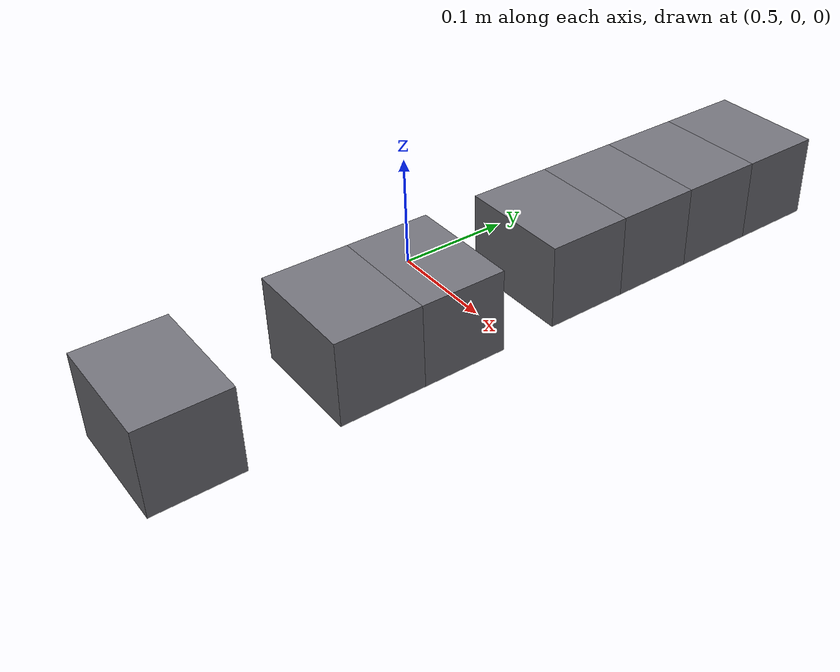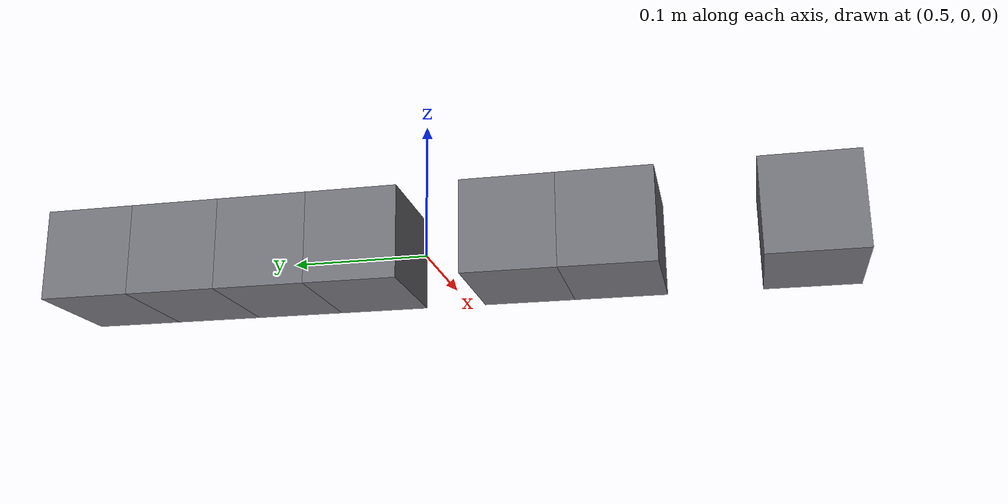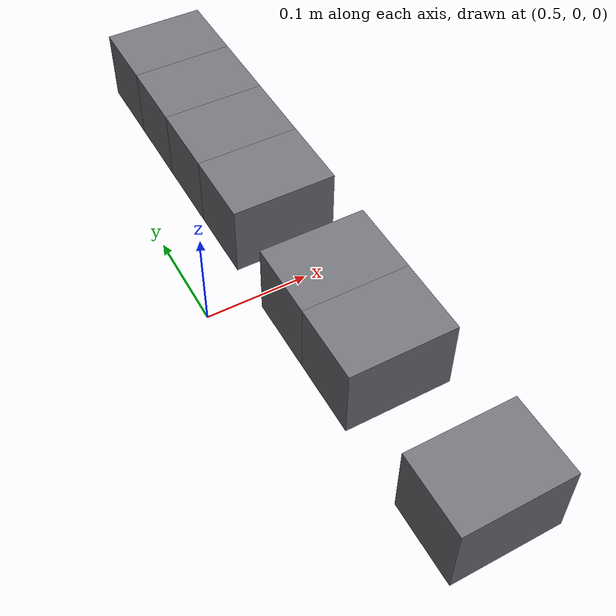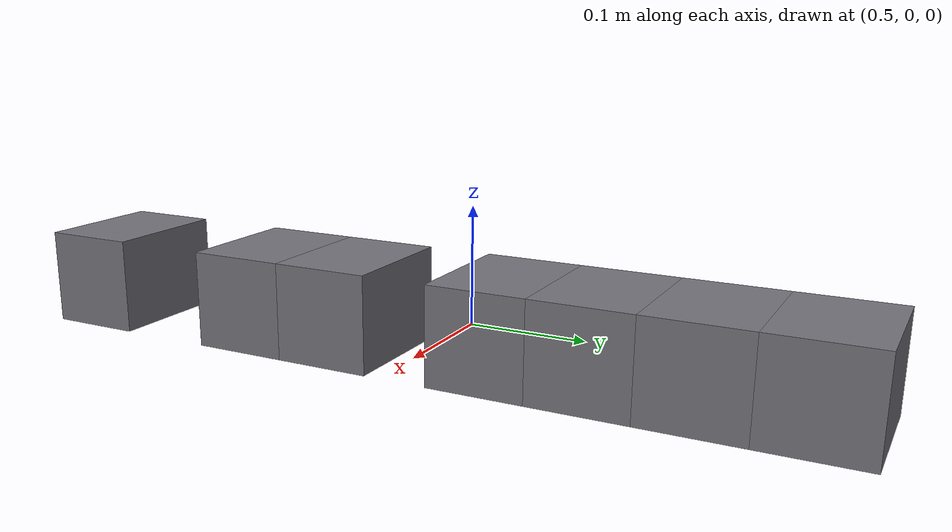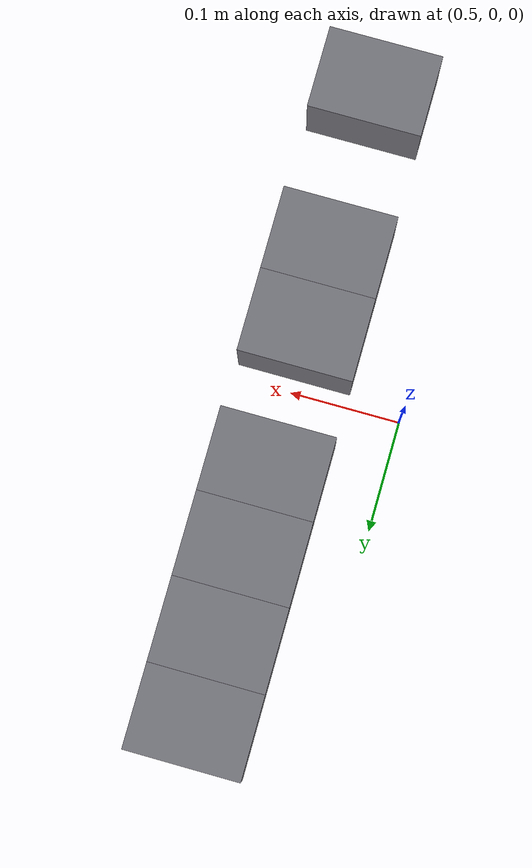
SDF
<?xml version="1.0"?>
<sdf version="1.7">
  <model name="oim_icra_sign"><static>true</static>
    <link name="I">
      <pose>0.6 -0.275 0.0375 0 0 0</pose>
      <collision name="collision"><geometry><box><size>0.103 0.075 0.075</size></box></geometry>
        <surface><friction><ode><mu>0.8</mu><mu2>0.8</mu2></ode></friction></surface>
      </collision>
      <visual name="visual"><geometry><box><size>0.103 0.075 0.075</size></box></geometry>
        <material><diffuse>0.45 0.45 0.48 1</diffuse></material></visual>
    </link>
    <link name="R">
      <pose>0.6 -0.125 0.0375 0 0 0</pose>
      <collision name="collision"><geometry><box><size>0.103 0.075 0.075</size></box></geometry>
        <surface><friction><ode><mu>0.8</mu><mu2>0.8</mu2></ode></friction></surface>
      </collision>
      <visual name="visual"><geometry><box><size>0.103 0.075 0.075</size></box></geometry>
        <material><diffuse>0.45 0.45 0.48 1</diffuse></material></visual>
    </link>
    <link name="A">
      <pose>0.6 -0.05 0.0375 0 0 0</pose>
      <collision name="collision"><geometry><box><size>0.103 0.075 0.075</size></box></geometry>
        <surface><friction><ode><mu>0.8</mu><mu2>0.8</mu2></ode></friction></surface>
      </collision>
      <visual name="visual"><geometry><box><size>0.103 0.075 0.075</size></box></geometry>
        <material><diffuse>0.45 0.45 0.48 1</diffuse></material></visual>
    </link>
    <link name="2">
      <pose>0.6 0.075 0.0375 0 0 0</pose>
      <collision name="collision"><geometry><box><size>0.103 0.075 0.075</size></box></geometry>
        <surface><friction><ode><mu>0.8</mu><mu2>0.8</mu2></ode></friction></surface>
      </collision>
      <visual name="visual"><geometry><box><size>0.103 0.075 0.075</size></box></geometry>
        <material><diffuse>0.45 0.45 0.48 1</diffuse></material></visual>
    </link>
    <link name="0">
      <pose>0.6 0.15 0.0375 0 0 0</pose>
      <collision name="collision"><geometry><box><size>0.103 0.075 0.075</size></box></geometry>
        <surface><friction><ode><mu>0.8</mu><mu2>0.8</mu2></ode></friction></surface>
      </collision>
      <visual name="visual"><geometry><box><size>0.103 0.075 0.075</size></box></geometry>
        <material><diffuse>0.45 0.45 0.48 1</diffuse></material></visual>
    </link>
    <link name="2b">
      <pose>0.6 0.225 0.0375 0 0 0</pose>
      <collision name="collision"><geometry><box><size>0.103 0.075 0.075</size></box></geometry>
        <surface><friction><ode><mu>0.8</mu><mu2>0.8</mu2></ode></friction></surface>
      </collision>
      <visual name="visual"><geometry><box><size>0.103 0.075 0.075</size></box></geometry>
        <material><diffuse>0.45 0.45 0.48 1</diffuse></material></visual>
    </link>
    <link name="6">
      <pose>0.6 0.3 0.0375 0 0 0</pose>
      <collision name="collision"><geometry><box><size>0.103 0.075 0.075</size></box></geometry>
        <surface><friction><ode><mu>0.8</mu><mu2>0.8</mu2></ode></friction></surface>
      </collision>
      <visual name="visual"><geometry><box><size>0.103 0.075 0.075</size></box></geometry>
        <material><diffuse>0.45 0.45 0.48 1</diffuse></material></visual>
    </link>
  </model>
</sdf>
